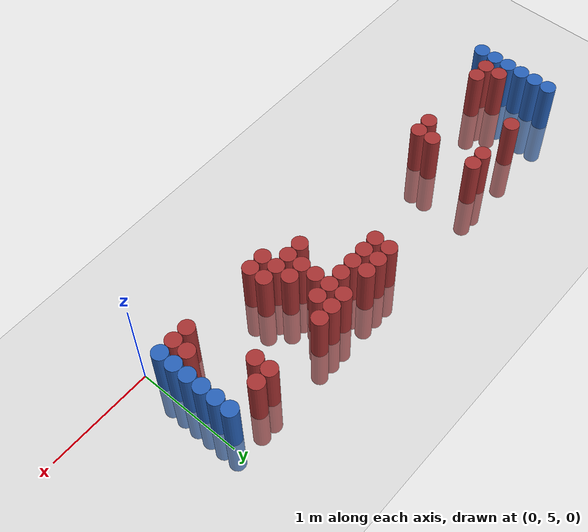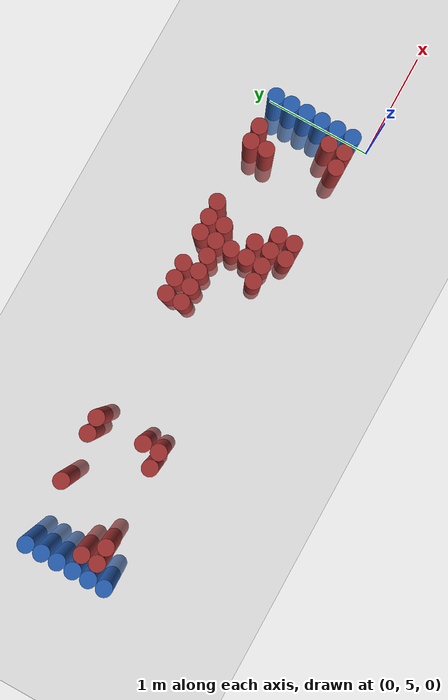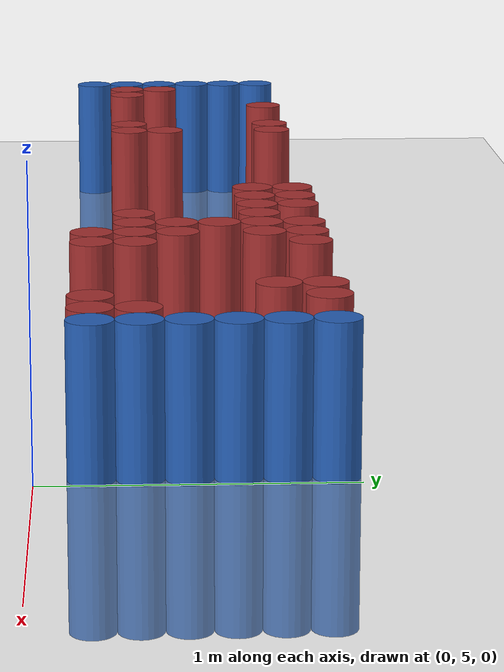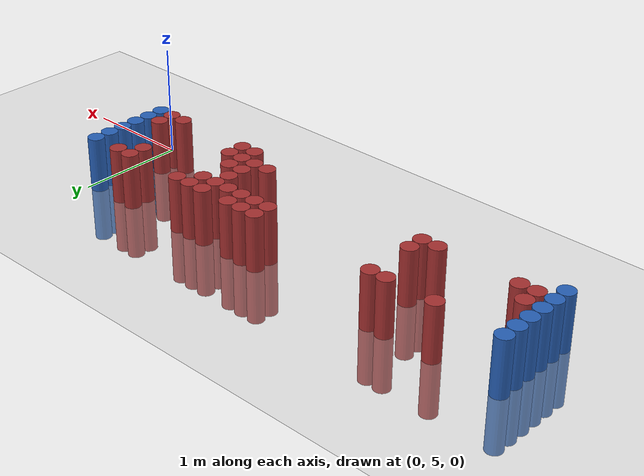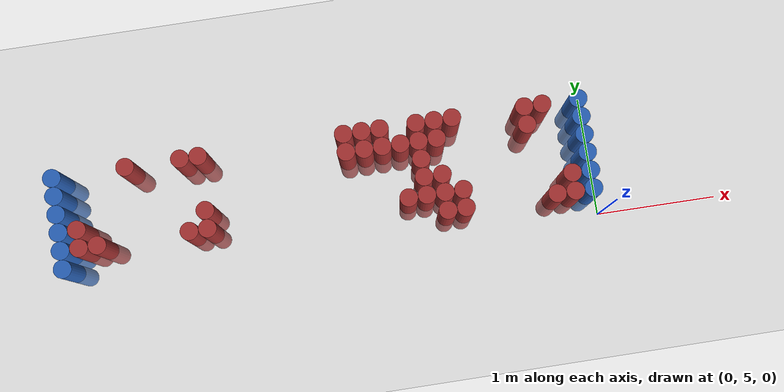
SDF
<sdf version="1.6">
 <world name="default">
  <model name="ground_plane">
   <static>1</static>
   <link name="link">
    <collision name="collision">
     <geometry><plane><normal>0 0 1</normal><size>100 100</size></plane></geometry>
     <surface><friction><ode><mu>100</mu><mu2>50</mu2></ode></friction></surface>
    </collision>
    <visual name="visual">
     <cast_shadows>0</cast_shadows>
     <geometry><plane><normal>0 0 1</normal><size>100 100</size></plane></geometry>
     <material>
      <script><uri>file://media/materials/scripts/gazebo.material</uri><name>Gazebo/Grey</name></script>
     </material>
    </visual>
   </link>
  </model>
  <model name="unit_cylinder_96">
   <static>1</static>
   <pose>-4.425000 5.175000 0.000000 0.000000 0.000000 0.000000</pose>
   <link name="link">
    <inertial>
     <mass>1</mass>
     <inertia><ixx>0.145833</ixx><ixy>0</ixy><ixz>0</ixz><iyy>0.145833</iyy><iyz>0</iyz><izz>0.125</izz></inertia>
    </inertial>
    <collision name="collision">
     <geometry><cylinder><radius>0.075000</radius><length>1</length></cylinder></geometry>
    </collision>
    <visual name="visual">
     <geometry><cylinder><radius>0.075000</radius><length>1</length></cylinder></geometry>
     <material>
      <ambient>0.152000 0.379000 0.720000 1</ambient>
      <diffuse>0.152000 0.379000 0.720000 1</diffuse>
     </material>
     <material>
      <script><name>Gazebo/Grey</name><uri>file://media/materials/scripts/gazebo.material</uri></script>
     </material>
    </visual>
   </link>
  </model>
  <model name="unit_cylinder_97">
   <static>1</static>
   <pose>-4.425000 5.325000 0.000000 0.000000 0.000000 0.000000</pose>
   <link name="link">
    <inertial>
     <mass>1</mass>
     <inertia><ixx>0.145833</ixx><ixy>0</ixy><ixz>0</ixz><iyy>0.145833</iyy><iyz>0</iyz><izz>0.125</izz></inertia>
    </inertial>
    <collision name="collision">
     <geometry><cylinder><radius>0.075000</radius><length>1</length></cylinder></geometry>
    </collision>
    <visual name="visual">
     <geometry><cylinder><radius>0.075000</radius><length>1</length></cylinder></geometry>
     <material>
      <ambient>0.152000 0.379000 0.720000 1</ambient>
      <diffuse>0.152000 0.379000 0.720000 1</diffuse>
     </material>
     <material>
      <script><name>Gazebo/Grey</name><uri>file://media/materials/scripts/gazebo.material</uri></script>
     </material>
    </visual>
   </link>
  </model>
  <model name="unit_cylinder_98">
   <static>1</static>
   <pose>-4.425000 5.475000 0.000000 0.000000 0.000000 0.000000</pose>
   <link name="link">
    <inertial>
     <mass>1</mass>
     <inertia><ixx>0.145833</ixx><ixy>0</ixy><ixz>0</ixz><iyy>0.145833</iyy><iyz>0</iyz><izz>0.125</izz></inertia>
    </inertial>
    <collision name="collision">
     <geometry><cylinder><radius>0.075000</radius><length>1</length></cylinder></geometry>
    </collision>
    <visual name="visual">
     <geometry><cylinder><radius>0.075000</radius><length>1</length></cylinder></geometry>
     <material>
      <ambient>0.152000 0.379000 0.720000 1</ambient>
      <diffuse>0.152000 0.379000 0.720000 1</diffuse>
     </material>
     <material>
      <script><name>Gazebo/Grey</name><uri>file://media/materials/scripts/gazebo.material</uri></script>
     </material>
    </visual>
   </link>
  </model>
  <model name="unit_cylinder_99">
   <static>1</static>
   <pose>-4.425000 5.625000 0.000000 0.000000 0.000000 0.000000</pose>
   <link name="link">
    <inertial>
     <mass>1</mass>
     <inertia><ixx>0.145833</ixx><ixy>0</ixy><ixz>0</ixz><iyy>0.145833</iyy><iyz>0</iyz><izz>0.125</izz></inertia>
    </inertial>
    <collision name="collision">
     <geometry><cylinder><radius>0.075000</radius><length>1</length></cylinder></geometry>
    </collision>
    <visual name="visual">
     <geometry><cylinder><radius>0.075000</radius><length>1</length></cylinder></geometry>
     <material>
      <ambient>0.152000 0.379000 0.720000 1</ambient>
      <diffuse>0.152000 0.379000 0.720000 1</diffuse>
     </material>
     <material>
      <script><name>Gazebo/Grey</name><uri>file://media/materials/scripts/gazebo.material</uri></script>
     </material>
    </visual>
   </link>
  </model>
  <model name="unit_cylinder_100">
   <static>1</static>
   <pose>-4.425000 5.775000 0.000000 0.000000 0.000000 0.000000</pose>
   <link name="link">
    <inertial>
     <mass>1</mass>
     <inertia><ixx>0.145833</ixx><ixy>0</ixy><ixz>0</ixz><iyy>0.145833</iyy><iyz>0</iyz><izz>0.125</izz></inertia>
    </inertial>
    <collision name="collision">
     <geometry><cylinder><radius>0.075000</radius><length>1</length></cylinder></geometry>
    </collision>
    <visual name="visual">
     <geometry><cylinder><radius>0.075000</radius><length>1</length></cylinder></geometry>
     <material>
      <ambient>0.152000 0.379000 0.720000 1</ambient>
      <diffuse>0.152000 0.379000 0.720000 1</diffuse>
     </material>
     <material>
      <script><name>Gazebo/Grey</name><uri>file://media/materials/scripts/gazebo.material</uri></script>
     </material>
    </visual>
   </link>
  </model>
  <model name="unit_cylinder_101">
   <static>1</static>
   <pose>-4.425000 5.925000 0.000000 0.000000 0.000000 0.000000</pose>
   <link name="link">
    <inertial>
     <mass>1</mass>
     <inertia><ixx>0.145833</ixx><ixy>0</ixy><ixz>0</ixz><iyy>0.145833</iyy><iyz>0</iyz><izz>0.125</izz></inertia>
    </inertial>
    <collision name="collision">
     <geometry><cylinder><radius>0.075000</radius><length>1</length></cylinder></geometry>
    </collision>
    <visual name="visual">
     <geometry><cylinder><radius>0.075000</radius><length>1</length></cylinder></geometry>
     <material>
      <ambient>0.152000 0.379000 0.720000 1</ambient>
      <diffuse>0.152000 0.379000 0.720000 1</diffuse>
     </material>
     <material>
      <script><name>Gazebo/Grey</name><uri>file://media/materials/scripts/gazebo.material</uri></script>
     </material>
    </visual>
   </link>
  </model>
  <model name="unit_cylinder_126">
   <static>1</static>
   <pose>-4.275000 5.325000 0.000000 0.000000 0.000000 0.000000</pose>
   <link name="link">
    <inertial>
     <mass>1</mass>
     <inertia><ixx>0.145833</ixx><ixy>0</ixy><ixz>0</ixz><iyy>0.145833</iyy><iyz>0</iyz><izz>0.125</izz></inertia>
    </inertial>
    <collision name="collision">
     <geometry><cylinder><radius>0.075000</radius><length>1</length></cylinder></geometry>
    </collision>
    <visual name="visual">
     <geometry><cylinder><radius>0.075000</radius><length>1</length></cylinder></geometry>
     <material>
      <ambient>0.648000 0.192000 0.192000 1</ambient>
      <diffuse>0.648000 0.192000 0.192000 1</diffuse>
     </material>
     <material>
      <script><name>Gazebo/Grey</name><uri>file://media/materials/scripts/gazebo.material</uri></script>
     </material>
    </visual>
   </link>
  </model>
  <model name="unit_cylinder_127">
   <static>1</static>
   <pose>-4.275000 5.475000 0.000000 0.000000 0.000000 0.000000</pose>
   <link name="link">
    <inertial>
     <mass>1</mass>
     <inertia><ixx>0.145833</ixx><ixy>0</ixy><ixz>0</ixz><iyy>0.145833</iyy><iyz>0</iyz><izz>0.125</izz></inertia>
    </inertial>
    <collision name="collision">
     <geometry><cylinder><radius>0.075000</radius><length>1</length></cylinder></geometry>
    </collision>
    <visual name="visual">
     <geometry><cylinder><radius>0.075000</radius><length>1</length></cylinder></geometry>
     <material>
      <ambient>0.648000 0.192000 0.192000 1</ambient>
      <diffuse>0.648000 0.192000 0.192000 1</diffuse>
     </material>
     <material>
      <script><name>Gazebo/Grey</name><uri>file://media/materials/scripts/gazebo.material</uri></script>
     </material>
    </visual>
   </link>
  </model>
  <model name="unit_cylinder_143">
   <static>1</static>
   <pose>-4.125000 5.325000 0.000000 0.000000 0.000000 0.000000</pose>
   <link name="link">
    <inertial>
     <mass>1</mass>
     <inertia><ixx>0.145833</ixx><ixy>0</ixy><ixz>0</ixz><iyy>0.145833</iyy><iyz>0</iyz><izz>0.125</izz></inertia>
    </inertial>
    <collision name="collision">
     <geometry><cylinder><radius>0.075000</radius><length>1</length></cylinder></geometry>
    </collision>
    <visual name="visual">
     <geometry><cylinder><radius>0.075000</radius><length>1</length></cylinder></geometry>
     <material>
      <ambient>0.648000 0.192000 0.192000 1</ambient>
      <diffuse>0.648000 0.192000 0.192000 1</diffuse>
     </material>
     <material>
      <script><name>Gazebo/Grey</name><uri>file://media/materials/scripts/gazebo.material</uri></script>
     </material>
    </visual>
   </link>
  </model>
  <model name="unit_cylinder_152">
   <static>1</static>
   <pose>-3.825000 5.925000 0.000000 0.000000 0.000000 0.000000</pose>
   <link name="link">
    <inertial>
     <mass>1</mass>
     <inertia><ixx>0.145833</ixx><ixy>0</ixy><ixz>0</ixz><iyy>0.145833</iyy><iyz>0</iyz><izz>0.125</izz></inertia>
    </inertial>
    <collision name="collision">
     <geometry><cylinder><radius>0.075000</radius><length>1</length></cylinder></geometry>
    </collision>
    <visual name="visual">
     <geometry><cylinder><radius>0.075000</radius><length>1</length></cylinder></geometry>
     <material>
      <ambient>0.648000 0.192000 0.192000 1</ambient>
      <diffuse>0.648000 0.192000 0.192000 1</diffuse>
     </material>
     <material>
      <script><name>Gazebo/Grey</name><uri>file://media/materials/scripts/gazebo.material</uri></script>
     </material>
    </visual>
   </link>
  </model>
  <model name="unit_cylinder_163">
   <static>1</static>
   <pose>-3.375000 5.325000 0.000000 0.000000 0.000000 0.000000</pose>
   <link name="link">
    <inertial>
     <mass>1</mass>
     <inertia><ixx>0.145833</ixx><ixy>0</ixy><ixz>0</ixz><iyy>0.145833</iyy><iyz>0</iyz><izz>0.125</izz></inertia>
    </inertial>
    <collision name="collision">
     <geometry><cylinder><radius>0.075000</radius><length>1</length></cylinder></geometry>
    </collision>
    <visual name="visual">
     <geometry><cylinder><radius>0.075000</radius><length>1</length></cylinder></geometry>
     <material>
      <ambient>0.648000 0.192000 0.192000 1</ambient>
      <diffuse>0.648000 0.192000 0.192000 1</diffuse>
     </material>
     <material>
      <script><name>Gazebo/Grey</name><uri>file://media/materials/scripts/gazebo.material</uri></script>
     </material>
    </visual>
   </link>
  </model>
  <model name="unit_cylinder_164">
   <static>1</static>
   <pose>-3.375000 5.925000 0.000000 0.000000 0.000000 0.000000</pose>
   <link name="link">
    <inertial>
     <mass>1</mass>
     <inertia><ixx>0.145833</ixx><ixy>0</ixy><ixz>0</ixz><iyy>0.145833</iyy><iyz>0</iyz><izz>0.125</izz></inertia>
    </inertial>
    <collision name="collision">
     <geometry><cylinder><radius>0.075000</radius><length>1</length></cylinder></geometry>
    </collision>
    <visual name="visual">
     <geometry><cylinder><radius>0.075000</radius><length>1</length></cylinder></geometry>
     <material>
      <ambient>0.648000 0.192000 0.192000 1</ambient>
      <diffuse>0.648000 0.192000 0.192000 1</diffuse>
     </material>
     <material>
      <script><name>Gazebo/Grey</name><uri>file://media/materials/scripts/gazebo.material</uri></script>
     </material>
    </visual>
   </link>
  </model>
  <model name="unit_cylinder_166">
   <static>1</static>
   <pose>-3.225000 5.325000 0.000000 0.000000 0.000000 0.000000</pose>
   <link name="link">
    <inertial>
     <mass>1</mass>
     <inertia><ixx>0.145833</ixx><ixy>0</ixy><ixz>0</ixz><iyy>0.145833</iyy><iyz>0</iyz><izz>0.125</izz></inertia>
    </inertial>
    <collision name="collision">
     <geometry><cylinder><radius>0.075000</radius><length>1</length></cylinder></geometry>
    </collision>
    <visual name="visual">
     <geometry><cylinder><radius>0.075000</radius><length>1</length></cylinder></geometry>
     <material>
      <ambient>0.648000 0.192000 0.192000 1</ambient>
      <diffuse>0.648000 0.192000 0.192000 1</diffuse>
     </material>
     <material>
      <script><name>Gazebo/Grey</name><uri>file://media/materials/scripts/gazebo.material</uri></script>
     </material>
    </visual>
   </link>
  </model>
  <model name="unit_cylinder_167">
   <static>1</static>
   <pose>-3.225000 5.475000 0.000000 0.000000 0.000000 0.000000</pose>
   <link name="link">
    <inertial>
     <mass>1</mass>
     <inertia><ixx>0.145833</ixx><ixy>0</ixy><ixz>0</ixz><iyy>0.145833</iyy><iyz>0</iyz><izz>0.125</izz></inertia>
    </inertial>
    <collision name="collision">
     <geometry><cylinder><radius>0.075000</radius><length>1</length></cylinder></geometry>
    </collision>
    <visual name="visual">
     <geometry><cylinder><radius>0.075000</radius><length>1</length></cylinder></geometry>
     <material>
      <ambient>0.648000 0.192000 0.192000 1</ambient>
      <diffuse>0.648000 0.192000 0.192000 1</diffuse>
     </material>
     <material>
      <script><name>Gazebo/Grey</name><uri>file://media/materials/scripts/gazebo.material</uri></script>
     </material>
    </visual>
   </link>
  </model>
  <model name="unit_cylinder_168">
   <static>1</static>
   <pose>-3.225000 5.925000 0.000000 0.000000 0.000000 0.000000</pose>
   <link name="link">
    <inertial>
     <mass>1</mass>
     <inertia><ixx>0.145833</ixx><ixy>0</ixy><ixz>0</ixz><iyy>0.145833</iyy><iyz>0</iyz><izz>0.125</izz></inertia>
    </inertial>
    <collision name="collision">
     <geometry><cylinder><radius>0.075000</radius><length>1</length></cylinder></geometry>
    </collision>
    <visual name="visual">
     <geometry><cylinder><radius>0.075000</radius><length>1</length></cylinder></geometry>
     <material>
      <ambient>0.648000 0.192000 0.192000 1</ambient>
      <diffuse>0.648000 0.192000 0.192000 1</diffuse>
     </material>
     <material>
      <script><name>Gazebo/Grey</name><uri>file://media/materials/scripts/gazebo.material</uri></script>
     </material>
    </visual>
   </link>
  </model>
  <model name="unit_cylinder_189">
   <static>1</static>
   <pose>-2.025000 5.775000 0.000000 0.000000 0.000000 0.000000</pose>
   <link name="link">
    <inertial>
     <mass>1</mass>
     <inertia><ixx>0.145833</ixx><ixy>0</ixy><ixz>0</ixz><iyy>0.145833</iyy><iyz>0</iyz><izz>0.125</izz></inertia>
    </inertial>
    <collision name="collision">
     <geometry><cylinder><radius>0.075000</radius><length>1</length></cylinder></geometry>
    </collision>
    <visual name="visual">
     <geometry><cylinder><radius>0.075000</radius><length>1</length></cylinder></geometry>
     <material>
      <ambient>0.648000 0.192000 0.192000 1</ambient>
      <diffuse>0.648000 0.192000 0.192000 1</diffuse>
     </material>
     <material>
      <script><name>Gazebo/Grey</name><uri>file://media/materials/scripts/gazebo.material</uri></script>
     </material>
    </visual>
   </link>
  </model>
  <model name="unit_cylinder_190">
   <static>1</static>
   <pose>-2.025000 5.925000 0.000000 0.000000 0.000000 0.000000</pose>
   <link name="link">
    <inertial>
     <mass>1</mass>
     <inertia><ixx>0.145833</ixx><ixy>0</ixy><ixz>0</ixz><iyy>0.145833</iyy><iyz>0</iyz><izz>0.125</izz></inertia>
    </inertial>
    <collision name="collision">
     <geometry><cylinder><radius>0.075000</radius><length>1</length></cylinder></geometry>
    </collision>
    <visual name="visual">
     <geometry><cylinder><radius>0.075000</radius><length>1</length></cylinder></geometry>
     <material>
      <ambient>0.648000 0.192000 0.192000 1</ambient>
      <diffuse>0.648000 0.192000 0.192000 1</diffuse>
     </material>
     <material>
      <script><name>Gazebo/Grey</name><uri>file://media/materials/scripts/gazebo.material</uri></script>
     </material>
    </visual>
   </link>
  </model>
  <model name="unit_cylinder_192">
   <static>1</static>
   <pose>-1.875000 5.775000 0.000000 0.000000 0.000000 0.000000</pose>
   <link name="link">
    <inertial>
     <mass>1</mass>
     <inertia><ixx>0.145833</ixx><ixy>0</ixy><ixz>0</ixz><iyy>0.145833</iyy><iyz>0</iyz><izz>0.125</izz></inertia>
    </inertial>
    <collision name="collision">
     <geometry><cylinder><radius>0.075000</radius><length>1</length></cylinder></geometry>
    </collision>
    <visual name="visual">
     <geometry><cylinder><radius>0.075000</radius><length>1</length></cylinder></geometry>
     <material>
      <ambient>0.648000 0.192000 0.192000 1</ambient>
      <diffuse>0.648000 0.192000 0.192000 1</diffuse>
     </material>
     <material>
      <script><name>Gazebo/Grey</name><uri>file://media/materials/scripts/gazebo.material</uri></script>
     </material>
    </visual>
   </link>
  </model>
  <model name="unit_cylinder_193">
   <static>1</static>
   <pose>-1.875000 5.925000 0.000000 0.000000 0.000000 0.000000</pose>
   <link name="link">
    <inertial>
     <mass>1</mass>
     <inertia><ixx>0.145833</ixx><ixy>0</ixy><ixz>0</ixz><iyy>0.145833</iyy><iyz>0</iyz><izz>0.125</izz></inertia>
    </inertial>
    <collision name="collision">
     <geometry><cylinder><radius>0.075000</radius><length>1</length></cylinder></geometry>
    </collision>
    <visual name="visual">
     <geometry><cylinder><radius>0.075000</radius><length>1</length></cylinder></geometry>
     <material>
      <ambient>0.648000 0.192000 0.192000 1</ambient>
      <diffuse>0.648000 0.192000 0.192000 1</diffuse>
     </material>
     <material>
      <script><name>Gazebo/Grey</name><uri>file://media/materials/scripts/gazebo.material</uri></script>
     </material>
    </visual>
   </link>
  </model>
  <model name="unit_cylinder_196">
   <static>1</static>
   <pose>-1.725000 5.775000 0.000000 0.000000 0.000000 0.000000</pose>
   <link name="link">
    <inertial>
     <mass>1</mass>
     <inertia><ixx>0.145833</ixx><ixy>0</ixy><ixz>0</ixz><iyy>0.145833</iyy><iyz>0</iyz><izz>0.125</izz></inertia>
    </inertial>
    <collision name="collision">
     <geometry><cylinder><radius>0.075000</radius><length>1</length></cylinder></geometry>
    </collision>
    <visual name="visual">
     <geometry><cylinder><radius>0.075000</radius><length>1</length></cylinder></geometry>
     <material>
      <ambient>0.648000 0.192000 0.192000 1</ambient>
      <diffuse>0.648000 0.192000 0.192000 1</diffuse>
     </material>
     <material>
      <script><name>Gazebo/Grey</name><uri>file://media/materials/scripts/gazebo.material</uri></script>
     </material>
    </visual>
   </link>
  </model>
  <model name="unit_cylinder_197">
   <static>1</static>
   <pose>-1.725000 5.925000 0.000000 0.000000 0.000000 0.000000</pose>
   <link name="link">
    <inertial>
     <mass>1</mass>
     <inertia><ixx>0.145833</ixx><ixy>0</ixy><ixz>0</ixz><iyy>0.145833</iyy><iyz>0</iyz><izz>0.125</izz></inertia>
    </inertial>
    <collision name="collision">
     <geometry><cylinder><radius>0.075000</radius><length>1</length></cylinder></geometry>
    </collision>
    <visual name="visual">
     <geometry><cylinder><radius>0.075000</radius><length>1</length></cylinder></geometry>
     <material>
      <ambient>0.648000 0.192000 0.192000 1</ambient>
      <diffuse>0.648000 0.192000 0.192000 1</diffuse>
     </material>
     <material>
      <script><name>Gazebo/Grey</name><uri>file://media/materials/scripts/gazebo.material</uri></script>
     </material>
    </visual>
   </link>
  </model>
  <model name="unit_cylinder_204">
   <static>1</static>
   <pose>-1.575000 5.325000 0.000000 0.000000 0.000000 0.000000</pose>
   <link name="link">
    <inertial>
     <mass>1</mass>
     <inertia><ixx>0.145833</ixx><ixy>0</ixy><ixz>0</ixz><iyy>0.145833</iyy><iyz>0</iyz><izz>0.125</izz></inertia>
    </inertial>
    <collision name="collision">
     <geometry><cylinder><radius>0.075000</radius><length>1</length></cylinder></geometry>
    </collision>
    <visual name="visual">
     <geometry><cylinder><radius>0.075000</radius><length>1</length></cylinder></geometry>
     <material>
      <ambient>0.648000 0.192000 0.192000 1</ambient>
      <diffuse>0.648000 0.192000 0.192000 1</diffuse>
     </material>
     <material>
      <script><name>Gazebo/Grey</name><uri>file://media/materials/scripts/gazebo.material</uri></script>
     </material>
    </visual>
   </link>
  </model>
  <model name="unit_cylinder_205">
   <static>1</static>
   <pose>-1.575000 5.775000 0.000000 0.000000 0.000000 0.000000</pose>
   <link name="link">
    <inertial>
     <mass>1</mass>
     <inertia><ixx>0.145833</ixx><ixy>0</ixy><ixz>0</ixz><iyy>0.145833</iyy><iyz>0</iyz><izz>0.125</izz></inertia>
    </inertial>
    <collision name="collision">
     <geometry><cylinder><radius>0.075000</radius><length>1</length></cylinder></geometry>
    </collision>
    <visual name="visual">
     <geometry><cylinder><radius>0.075000</radius><length>1</length></cylinder></geometry>
     <material>
      <ambient>0.648000 0.192000 0.192000 1</ambient>
      <diffuse>0.648000 0.192000 0.192000 1</diffuse>
     </material>
     <material>
      <script><name>Gazebo/Grey</name><uri>file://media/materials/scripts/gazebo.material</uri></script>
     </material>
    </visual>
   </link>
  </model>
  <model name="unit_cylinder_213">
   <static>1</static>
   <pose>-1.425000 5.325000 0.000000 0.000000 0.000000 0.000000</pose>
   <link name="link">
    <inertial>
     <mass>1</mass>
     <inertia><ixx>0.145833</ixx><ixy>0</ixy><ixz>0</ixz><iyy>0.145833</iyy><iyz>0</iyz><izz>0.125</izz></inertia>
    </inertial>
    <collision name="collision">
     <geometry><cylinder><radius>0.075000</radius><length>1</length></cylinder></geometry>
    </collision>
    <visual name="visual">
     <geometry><cylinder><radius>0.075000</radius><length>1</length></cylinder></geometry>
     <material>
      <ambient>0.648000 0.192000 0.192000 1</ambient>
      <diffuse>0.648000 0.192000 0.192000 1</diffuse>
     </material>
     <material>
      <script><name>Gazebo/Grey</name><uri>file://media/materials/scripts/gazebo.material</uri></script>
     </material>
    </visual>
   </link>
  </model>
  <model name="unit_cylinder_214">
   <static>1</static>
   <pose>-1.425000 5.475000 0.000000 0.000000 0.000000 0.000000</pose>
   <link name="link">
    <inertial>
     <mass>1</mass>
     <inertia><ixx>0.145833</ixx><ixy>0</ixy><ixz>0</ixz><iyy>0.145833</iyy><iyz>0</iyz><izz>0.125</izz></inertia>
    </inertial>
    <collision name="collision">
     <geometry><cylinder><radius>0.075000</radius><length>1</length></cylinder></geometry>
    </collision>
    <visual name="visual">
     <geometry><cylinder><radius>0.075000</radius><length>1</length></cylinder></geometry>
     <material>
      <ambient>0.648000 0.192000 0.192000 1</ambient>
      <diffuse>0.648000 0.192000 0.192000 1</diffuse>
     </material>
     <material>
      <script><name>Gazebo/Grey</name><uri>file://media/materials/scripts/gazebo.material</uri></script>
     </material>
    </visual>
   </link>
  </model>
  <model name="unit_cylinder_215">
   <static>1</static>
   <pose>-1.425000 5.625000 0.000000 0.000000 0.000000 0.000000</pose>
   <link name="link">
    <inertial>
     <mass>1</mass>
     <inertia><ixx>0.145833</ixx><ixy>0</ixy><ixz>0</ixz><iyy>0.145833</iyy><iyz>0</iyz><izz>0.125</izz></inertia>
    </inertial>
    <collision name="collision">
     <geometry><cylinder><radius>0.075000</radius><length>1</length></cylinder></geometry>
    </collision>
    <visual name="visual">
     <geometry><cylinder><radius>0.075000</radius><length>1</length></cylinder></geometry>
     <material>
      <ambient>0.648000 0.192000 0.192000 1</ambient>
      <diffuse>0.648000 0.192000 0.192000 1</diffuse>
     </material>
     <material>
      <script><name>Gazebo/Grey</name><uri>file://media/materials/scripts/gazebo.material</uri></script>
     </material>
    </visual>
   </link>
  </model>
  <model name="unit_cylinder_216">
   <static>1</static>
   <pose>-1.425000 5.775000 0.000000 0.000000 0.000000 0.000000</pose>
   <link name="link">
    <inertial>
     <mass>1</mass>
     <inertia><ixx>0.145833</ixx><ixy>0</ixy><ixz>0</ixz><iyy>0.145833</iyy><iyz>0</iyz><izz>0.125</izz></inertia>
    </inertial>
    <collision name="collision">
     <geometry><cylinder><radius>0.075000</radius><length>1</length></cylinder></geometry>
    </collision>
    <visual name="visual">
     <geometry><cylinder><radius>0.075000</radius><length>1</length></cylinder></geometry>
     <material>
      <ambient>0.648000 0.192000 0.192000 1</ambient>
      <diffuse>0.648000 0.192000 0.192000 1</diffuse>
     </material>
     <material>
      <script><name>Gazebo/Grey</name><uri>file://media/materials/scripts/gazebo.material</uri></script>
     </material>
    </visual>
   </link>
  </model>
  <model name="unit_cylinder_217">
   <static>1</static>
   <pose>-1.425000 5.925000 0.000000 0.000000 0.000000 0.000000</pose>
   <link name="link">
    <inertial>
     <mass>1</mass>
     <inertia><ixx>0.145833</ixx><ixy>0</ixy><ixz>0</ixz><iyy>0.145833</iyy><iyz>0</iyz><izz>0.125</izz></inertia>
    </inertial>
    <collision name="collision">
     <geometry><cylinder><radius>0.075000</radius><length>1</length></cylinder></geometry>
    </collision>
    <visual name="visual">
     <geometry><cylinder><radius>0.075000</radius><length>1</length></cylinder></geometry>
     <material>
      <ambient>0.648000 0.192000 0.192000 1</ambient>
      <diffuse>0.648000 0.192000 0.192000 1</diffuse>
     </material>
     <material>
      <script><name>Gazebo/Grey</name><uri>file://media/materials/scripts/gazebo.material</uri></script>
     </material>
    </visual>
   </link>
  </model>
  <model name="unit_cylinder_224">
   <static>1</static>
   <pose>-1.275000 5.175000 0.000000 0.000000 0.000000 0.000000</pose>
   <link name="link">
    <inertial>
     <mass>1</mass>
     <inertia><ixx>0.145833</ixx><ixy>0</ixy><ixz>0</ixz><iyy>0.145833</iyy><iyz>0</iyz><izz>0.125</izz></inertia>
    </inertial>
    <collision name="collision">
     <geometry><cylinder><radius>0.075000</radius><length>1</length></cylinder></geometry>
    </collision>
    <visual name="visual">
     <geometry><cylinder><radius>0.075000</radius><length>1</length></cylinder></geometry>
     <material>
      <ambient>0.648000 0.192000 0.192000 1</ambient>
      <diffuse>0.648000 0.192000 0.192000 1</diffuse>
     </material>
     <material>
      <script><name>Gazebo/Grey</name><uri>file://media/materials/scripts/gazebo.material</uri></script>
     </material>
    </visual>
   </link>
  </model>
  <model name="unit_cylinder_225">
   <static>1</static>
   <pose>-1.275000 5.325000 0.000000 0.000000 0.000000 0.000000</pose>
   <link name="link">
    <inertial>
     <mass>1</mass>
     <inertia><ixx>0.145833</ixx><ixy>0</ixy><ixz>0</ixz><iyy>0.145833</iyy><iyz>0</iyz><izz>0.125</izz></inertia>
    </inertial>
    <collision name="collision">
     <geometry><cylinder><radius>0.075000</radius><length>1</length></cylinder></geometry>
    </collision>
    <visual name="visual">
     <geometry><cylinder><radius>0.075000</radius><length>1</length></cylinder></geometry>
     <material>
      <ambient>0.648000 0.192000 0.192000 1</ambient>
      <diffuse>0.648000 0.192000 0.192000 1</diffuse>
     </material>
     <material>
      <script><name>Gazebo/Grey</name><uri>file://media/materials/scripts/gazebo.material</uri></script>
     </material>
    </visual>
   </link>
  </model>
  <model name="unit_cylinder_226">
   <static>1</static>
   <pose>-1.275000 5.475000 0.000000 0.000000 0.000000 0.000000</pose>
   <link name="link">
    <inertial>
     <mass>1</mass>
     <inertia><ixx>0.145833</ixx><ixy>0</ixy><ixz>0</ixz><iyy>0.145833</iyy><iyz>0</iyz><izz>0.125</izz></inertia>
    </inertial>
    <collision name="collision">
     <geometry><cylinder><radius>0.075000</radius><length>1</length></cylinder></geometry>
    </collision>
    <visual name="visual">
     <geometry><cylinder><radius>0.075000</radius><length>1</length></cylinder></geometry>
     <material>
      <ambient>0.648000 0.192000 0.192000 1</ambient>
      <diffuse>0.648000 0.192000 0.192000 1</diffuse>
     </material>
     <material>
      <script><name>Gazebo/Grey</name><uri>file://media/materials/scripts/gazebo.material</uri></script>
     </material>
    </visual>
   </link>
  </model>
  <model name="unit_cylinder_227">
   <static>1</static>
   <pose>-1.275000 5.775000 0.000000 0.000000 0.000000 0.000000</pose>
   <link name="link">
    <inertial>
     <mass>1</mass>
     <inertia><ixx>0.145833</ixx><ixy>0</ixy><ixz>0</ixz><iyy>0.145833</iyy><iyz>0</iyz><izz>0.125</izz></inertia>
    </inertial>
    <collision name="collision">
     <geometry><cylinder><radius>0.075000</radius><length>1</length></cylinder></geometry>
    </collision>
    <visual name="visual">
     <geometry><cylinder><radius>0.075000</radius><length>1</length></cylinder></geometry>
     <material>
      <ambient>0.648000 0.192000 0.192000 1</ambient>
      <diffuse>0.648000 0.192000 0.192000 1</diffuse>
     </material>
     <material>
      <script><name>Gazebo/Grey</name><uri>file://media/materials/scripts/gazebo.material</uri></script>
     </material>
    </visual>
   </link>
  </model>
  <model name="unit_cylinder_228">
   <static>1</static>
   <pose>-1.275000 5.925000 0.000000 0.000000 0.000000 0.000000</pose>
   <link name="link">
    <inertial>
     <mass>1</mass>
     <inertia><ixx>0.145833</ixx><ixy>0</ixy><ixz>0</ixz><iyy>0.145833</iyy><iyz>0</iyz><izz>0.125</izz></inertia>
    </inertial>
    <collision name="collision">
     <geometry><cylinder><radius>0.075000</radius><length>1</length></cylinder></geometry>
    </collision>
    <visual name="visual">
     <geometry><cylinder><radius>0.075000</radius><length>1</length></cylinder></geometry>
     <material>
      <ambient>0.648000 0.192000 0.192000 1</ambient>
      <diffuse>0.648000 0.192000 0.192000 1</diffuse>
     </material>
     <material>
      <script><name>Gazebo/Grey</name><uri>file://media/materials/scripts/gazebo.material</uri></script>
     </material>
    </visual>
   </link>
  </model>
  <model name="unit_cylinder_237">
   <static>1</static>
   <pose>-1.125000 5.175000 0.000000 0.000000 0.000000 0.000000</pose>
   <link name="link">
    <inertial>
     <mass>1</mass>
     <inertia><ixx>0.145833</ixx><ixy>0</ixy><ixz>0</ixz><iyy>0.145833</iyy><iyz>0</iyz><izz>0.125</izz></inertia>
    </inertial>
    <collision name="collision">
     <geometry><cylinder><radius>0.075000</radius><length>1</length></cylinder></geometry>
    </collision>
    <visual name="visual">
     <geometry><cylinder><radius>0.075000</radius><length>1</length></cylinder></geometry>
     <material>
      <ambient>0.648000 0.192000 0.192000 1</ambient>
      <diffuse>0.648000 0.192000 0.192000 1</diffuse>
     </material>
     <material>
      <script><name>Gazebo/Grey</name><uri>file://media/materials/scripts/gazebo.material</uri></script>
     </material>
    </visual>
   </link>
  </model>
  <model name="unit_cylinder_238">
   <static>1</static>
   <pose>-1.125000 5.325000 0.000000 0.000000 0.000000 0.000000</pose>
   <link name="link">
    <inertial>
     <mass>1</mass>
     <inertia><ixx>0.145833</ixx><ixy>0</ixy><ixz>0</ixz><iyy>0.145833</iyy><iyz>0</iyz><izz>0.125</izz></inertia>
    </inertial>
    <collision name="collision">
     <geometry><cylinder><radius>0.075000</radius><length>1</length></cylinder></geometry>
    </collision>
    <visual name="visual">
     <geometry><cylinder><radius>0.075000</radius><length>1</length></cylinder></geometry>
     <material>
      <ambient>0.648000 0.192000 0.192000 1</ambient>
      <diffuse>0.648000 0.192000 0.192000 1</diffuse>
     </material>
     <material>
      <script><name>Gazebo/Grey</name><uri>file://media/materials/scripts/gazebo.material</uri></script>
     </material>
    </visual>
   </link>
  </model>
  <model name="unit_cylinder_239">
   <static>1</static>
   <pose>-1.125000 5.925000 0.000000 0.000000 0.000000 0.000000</pose>
   <link name="link">
    <inertial>
     <mass>1</mass>
     <inertia><ixx>0.145833</ixx><ixy>0</ixy><ixz>0</ixz><iyy>0.145833</iyy><iyz>0</iyz><izz>0.125</izz></inertia>
    </inertial>
    <collision name="collision">
     <geometry><cylinder><radius>0.075000</radius><length>1</length></cylinder></geometry>
    </collision>
    <visual name="visual">
     <geometry><cylinder><radius>0.075000</radius><length>1</length></cylinder></geometry>
     <material>
      <ambient>0.648000 0.192000 0.192000 1</ambient>
      <diffuse>0.648000 0.192000 0.192000 1</diffuse>
     </material>
     <material>
      <script><name>Gazebo/Grey</name><uri>file://media/materials/scripts/gazebo.material</uri></script>
     </material>
    </visual>
   </link>
  </model>
  <model name="unit_cylinder_276">
   <static>1</static>
   <pose>-0.525000 5.775000 0.000000 0.000000 0.000000 0.000000</pose>
   <link name="link">
    <inertial>
     <mass>1</mass>
     <inertia><ixx>0.145833</ixx><ixy>0</ixy><ixz>0</ixz><iyy>0.145833</iyy><iyz>0</iyz><izz>0.125</izz></inertia>
    </inertial>
    <collision name="collision">
     <geometry><cylinder><radius>0.075000</radius><length>1</length></cylinder></geometry>
    </collision>
    <visual name="visual">
     <geometry><cylinder><radius>0.075000</radius><length>1</length></cylinder></geometry>
     <material>
      <ambient>0.648000 0.192000 0.192000 1</ambient>
      <diffuse>0.648000 0.192000 0.192000 1</diffuse>
     </material>
     <material>
      <script><name>Gazebo/Grey</name><uri>file://media/materials/scripts/gazebo.material</uri></script>
     </material>
    </visual>
   </link>
  </model>
  <model name="unit_cylinder_277">
   <static>1</static>
   <pose>-0.525000 5.925000 0.000000 0.000000 0.000000 0.000000</pose>
   <link name="link">
    <inertial>
     <mass>1</mass>
     <inertia><ixx>0.145833</ixx><ixy>0</ixy><ixz>0</ixz><iyy>0.145833</iyy><iyz>0</iyz><izz>0.125</izz></inertia>
    </inertial>
    <collision name="collision">
     <geometry><cylinder><radius>0.075000</radius><length>1</length></cylinder></geometry>
    </collision>
    <visual name="visual">
     <geometry><cylinder><radius>0.075000</radius><length>1</length></cylinder></geometry>
     <material>
      <ambient>0.648000 0.192000 0.192000 1</ambient>
      <diffuse>0.648000 0.192000 0.192000 1</diffuse>
     </material>
     <material>
      <script><name>Gazebo/Grey</name><uri>file://media/materials/scripts/gazebo.material</uri></script>
     </material>
    </visual>
   </link>
  </model>
  <model name="unit_cylinder_282">
   <static>1</static>
   <pose>-0.375000 5.175000 0.000000 0.000000 0.000000 0.000000</pose>
   <link name="link">
    <inertial>
     <mass>1</mass>
     <inertia><ixx>0.145833</ixx><ixy>0</ixy><ixz>0</ixz><iyy>0.145833</iyy><iyz>0</iyz><izz>0.125</izz></inertia>
    </inertial>
    <collision name="collision">
     <geometry><cylinder><radius>0.075000</radius><length>1</length></cylinder></geometry>
    </collision>
    <visual name="visual">
     <geometry><cylinder><radius>0.075000</radius><length>1</length></cylinder></geometry>
     <material>
      <ambient>0.648000 0.192000 0.192000 1</ambient>
      <diffuse>0.648000 0.192000 0.192000 1</diffuse>
     </material>
     <material>
      <script><name>Gazebo/Grey</name><uri>file://media/materials/scripts/gazebo.material</uri></script>
     </material>
    </visual>
   </link>
  </model>
  <model name="unit_cylinder_283">
   <static>1</static>
   <pose>-0.375000 5.925000 0.000000 0.000000 0.000000 0.000000</pose>
   <link name="link">
    <inertial>
     <mass>1</mass>
     <inertia><ixx>0.145833</ixx><ixy>0</ixy><ixz>0</ixz><iyy>0.145833</iyy><iyz>0</iyz><izz>0.125</izz></inertia>
    </inertial>
    <collision name="collision">
     <geometry><cylinder><radius>0.075000</radius><length>1</length></cylinder></geometry>
    </collision>
    <visual name="visual">
     <geometry><cylinder><radius>0.075000</radius><length>1</length></cylinder></geometry>
     <material>
      <ambient>0.648000 0.192000 0.192000 1</ambient>
      <diffuse>0.648000 0.192000 0.192000 1</diffuse>
     </material>
     <material>
      <script><name>Gazebo/Grey</name><uri>file://media/materials/scripts/gazebo.material</uri></script>
     </material>
    </visual>
   </link>
  </model>
  <model name="unit_cylinder_293">
   <static>1</static>
   <pose>-0.225000 5.175000 0.000000 0.000000 0.000000 0.000000</pose>
   <link name="link">
    <inertial>
     <mass>1</mass>
     <inertia><ixx>0.145833</ixx><ixy>0</ixy><ixz>0</ixz><iyy>0.145833</iyy><iyz>0</iyz><izz>0.125</izz></inertia>
    </inertial>
    <collision name="collision">
     <geometry><cylinder><radius>0.075000</radius><length>1</length></cylinder></geometry>
    </collision>
    <visual name="visual">
     <geometry><cylinder><radius>0.075000</radius><length>1</length></cylinder></geometry>
     <material>
      <ambient>0.648000 0.192000 0.192000 1</ambient>
      <diffuse>0.648000 0.192000 0.192000 1</diffuse>
     </material>
     <material>
      <script><name>Gazebo/Grey</name><uri>file://media/materials/scripts/gazebo.material</uri></script>
     </material>
    </visual>
   </link>
  </model>
  <model name="unit_cylinder_294">
   <static>1</static>
   <pose>-0.225000 5.325000 0.000000 0.000000 0.000000 0.000000</pose>
   <link name="link">
    <inertial>
     <mass>1</mass>
     <inertia><ixx>0.145833</ixx><ixy>0</ixy><ixz>0</ixz><iyy>0.145833</iyy><iyz>0</iyz><izz>0.125</izz></inertia>
    </inertial>
    <collision name="collision">
     <geometry><cylinder><radius>0.075000</radius><length>1</length></cylinder></geometry>
    </collision>
    <visual name="visual">
     <geometry><cylinder><radius>0.075000</radius><length>1</length></cylinder></geometry>
     <material>
      <ambient>0.648000 0.192000 0.192000 1</ambient>
      <diffuse>0.648000 0.192000 0.192000 1</diffuse>
     </material>
     <material>
      <script><name>Gazebo/Grey</name><uri>file://media/materials/scripts/gazebo.material</uri></script>
     </material>
    </visual>
   </link>
  </model>
  <model name="unit_cylinder_307">
   <static>1</static>
   <pose>-0.075000 5.175000 0.000000 0.000000 0.000000 0.000000</pose>
   <link name="link">
    <inertial>
     <mass>1</mass>
     <inertia><ixx>0.145833</ixx><ixy>0</ixy><ixz>0</ixz><iyy>0.145833</iyy><iyz>0</iyz><izz>0.125</izz></inertia>
    </inertial>
    <collision name="collision">
     <geometry><cylinder><radius>0.075000</radius><length>1</length></cylinder></geometry>
    </collision>
    <visual name="visual">
     <geometry><cylinder><radius>0.075000</radius><length>1</length></cylinder></geometry>
     <material>
      <ambient>0.152000 0.379000 0.720000 1</ambient>
      <diffuse>0.152000 0.379000 0.720000 1</diffuse>
     </material>
     <material>
      <script><name>Gazebo/Grey</name><uri>file://media/materials/scripts/gazebo.material</uri></script>
     </material>
    </visual>
   </link>
  </model>
  <model name="unit_cylinder_308">
   <static>1</static>
   <pose>-0.075000 5.325000 0.000000 0.000000 0.000000 0.000000</pose>
   <link name="link">
    <inertial>
     <mass>1</mass>
     <inertia><ixx>0.145833</ixx><ixy>0</ixy><ixz>0</ixz><iyy>0.145833</iyy><iyz>0</iyz><izz>0.125</izz></inertia>
    </inertial>
    <collision name="collision">
     <geometry><cylinder><radius>0.075000</radius><length>1</length></cylinder></geometry>
    </collision>
    <visual name="visual">
     <geometry><cylinder><radius>0.075000</radius><length>1</length></cylinder></geometry>
     <material>
      <ambient>0.152000 0.379000 0.720000 1</ambient>
      <diffuse>0.152000 0.379000 0.720000 1</diffuse>
     </material>
     <material>
      <script><name>Gazebo/Grey</name><uri>file://media/materials/scripts/gazebo.material</uri></script>
     </material>
    </visual>
   </link>
  </model>
  <model name="unit_cylinder_309">
   <static>1</static>
   <pose>-0.075000 5.475000 0.000000 0.000000 0.000000 0.000000</pose>
   <link name="link">
    <inertial>
     <mass>1</mass>
     <inertia><ixx>0.145833</ixx><ixy>0</ixy><ixz>0</ixz><iyy>0.145833</iyy><iyz>0</iyz><izz>0.125</izz></inertia>
    </inertial>
    <collision name="collision">
     <geometry><cylinder><radius>0.075000</radius><length>1</length></cylinder></geometry>
    </collision>
    <visual name="visual">
     <geometry><cylinder><radius>0.075000</radius><length>1</length></cylinder></geometry>
     <material>
      <ambient>0.152000 0.379000 0.720000 1</ambient>
      <diffuse>0.152000 0.379000 0.720000 1</diffuse>
     </material>
     <material>
      <script><name>Gazebo/Grey</name><uri>file://media/materials/scripts/gazebo.material</uri></script>
     </material>
    </visual>
   </link>
  </model>
  <model name="unit_cylinder_310">
   <static>1</static>
   <pose>-0.075000 5.625000 0.000000 0.000000 0.000000 0.000000</pose>
   <link name="link">
    <inertial>
     <mass>1</mass>
     <inertia><ixx>0.145833</ixx><ixy>0</ixy><ixz>0</ixz><iyy>0.145833</iyy><iyz>0</iyz><izz>0.125</izz></inertia>
    </inertial>
    <collision name="collision">
     <geometry><cylinder><radius>0.075000</radius><length>1</length></cylinder></geometry>
    </collision>
    <visual name="visual">
     <geometry><cylinder><radius>0.075000</radius><length>1</length></cylinder></geometry>
     <material>
      <ambient>0.152000 0.379000 0.720000 1</ambient>
      <diffuse>0.152000 0.379000 0.720000 1</diffuse>
     </material>
     <material>
      <script><name>Gazebo/Grey</name><uri>file://media/materials/scripts/gazebo.material</uri></script>
     </material>
    </visual>
   </link>
  </model>
  <model name="unit_cylinder_311">
   <static>1</static>
   <pose>-0.075000 5.775000 0.000000 0.000000 0.000000 0.000000</pose>
   <link name="link">
    <inertial>
     <mass>1</mass>
     <inertia><ixx>0.145833</ixx><ixy>0</ixy><ixz>0</ixz><iyy>0.145833</iyy><iyz>0</iyz><izz>0.125</izz></inertia>
    </inertial>
    <collision name="collision">
     <geometry><cylinder><radius>0.075000</radius><length>1</length></cylinder></geometry>
    </collision>
    <visual name="visual">
     <geometry><cylinder><radius>0.075000</radius><length>1</length></cylinder></geometry>
     <material>
      <ambient>0.152000 0.379000 0.720000 1</ambient>
      <diffuse>0.152000 0.379000 0.720000 1</diffuse>
     </material>
     <material>
      <script><name>Gazebo/Grey</name><uri>file://media/materials/scripts/gazebo.material</uri></script>
     </material>
    </visual>
   </link>
  </model>
  <model name="unit_cylinder_312">
   <static>1</static>
   <pose>-0.075000 5.925000 0.000000 0.000000 0.000000 0.000000</pose>
   <link name="link">
    <inertial>
     <mass>1</mass>
     <inertia><ixx>0.145833</ixx><ixy>0</ixy><ixz>0</ixz><iyy>0.145833</iyy><iyz>0</iyz><izz>0.125</izz></inertia>
    </inertial>
    <collision name="collision">
     <geometry><cylinder><radius>0.075000</radius><length>1</length></cylinder></geometry>
    </collision>
    <visual name="visual">
     <geometry><cylinder><radius>0.075000</radius><length>1</length></cylinder></geometry>
     <material>
      <ambient>0.152000 0.379000 0.720000 1</ambient>
      <diffuse>0.152000 0.379000 0.720000 1</diffuse>
     </material>
     <material>
      <script><name>Gazebo/Grey</name><uri>file://media/materials/scripts/gazebo.material</uri></script>
     </material>
    </visual>
   </link>
  </model>
 </world>
</sdf>
